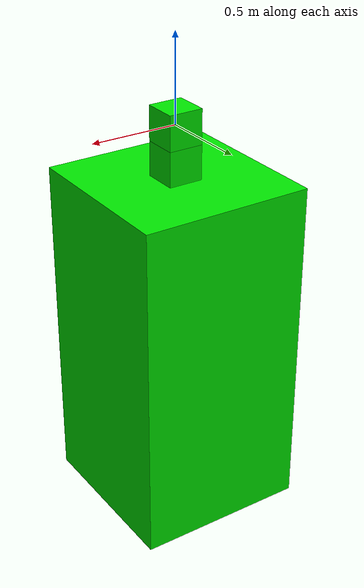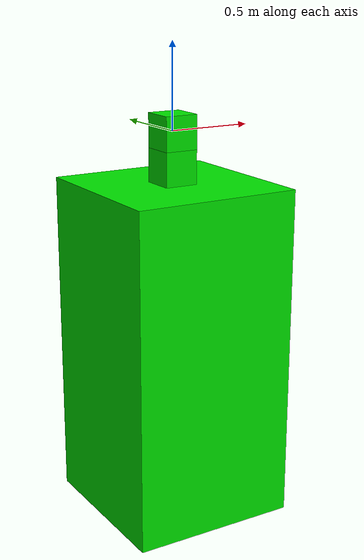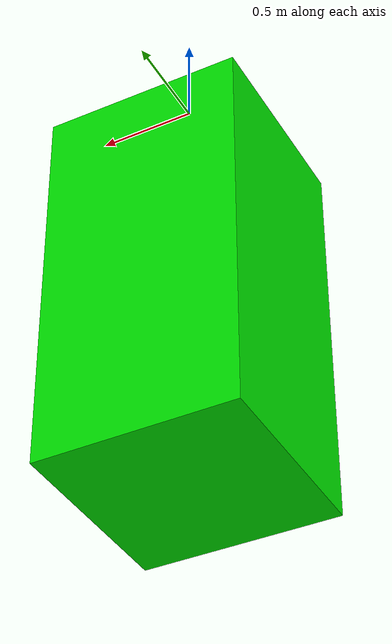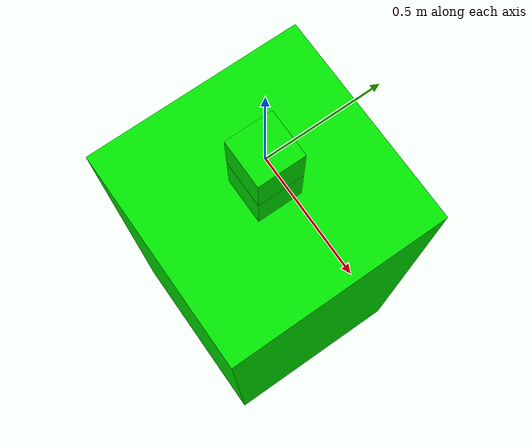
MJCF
<mujoco>
    <option timestep="0.001" integrator="RK4">
		<flag gravity="disable" energy="enable"/>
	</option>
    <compiler autolimits="true"/>
    <worldbody>
        <light diffuse=".5 .5 .5" pos="0 0 3" dir="0 0 -1"/>
        <geom type="plane" pos="0 0 -8" size="3 3 0.1" rgba=".9 0 0 1"/>
        <body pos="0 0 0" euler="0 0 0">
            <joint name="joint_y" type="hinge" pos="0 0 0.1" axis="0 -1 0"/>
            <geom type="box" size="0.1 0.1 0.1" rgba="0 .9 0 1" mass="1"/>
            <body pos="0 0 -0.2" euler="0 0 0">
                <joint name="joint_x" type="hinge" pos="0 0 0.1" axis="-1 0 0"/>
                <geom type="box" size="0.1 0.1 0.1" rgba="0 .9 0 1" mass="1"/>
                <body pos="0 0 -1.1 " euler="0 0 0">
                    <joint name="joint_z_twist" type="hinge" pos="0 0 1" axis="0 0 -1"/>
                    <inertial pos="0 0 0" euler="0 0 0" mass="1" diaginertia="0.66667 0.66667 0.66667"/>
                    <geom type="box" size="0.5 0.5 1" rgba="0 .9 0 1" mass="1"/>
                </body>
            </body>
        </body>
    </worldbody>
</mujoco>
